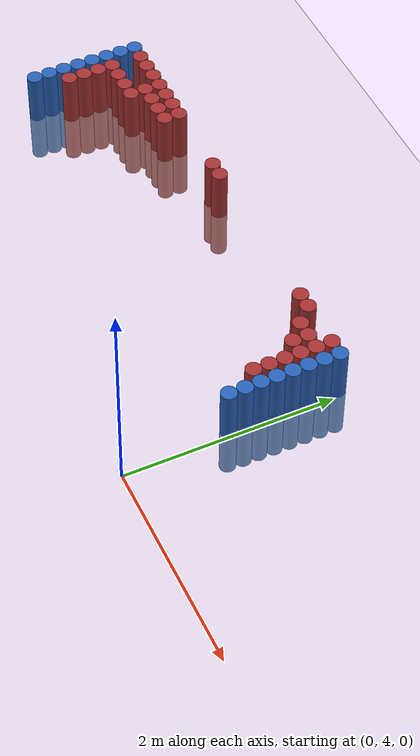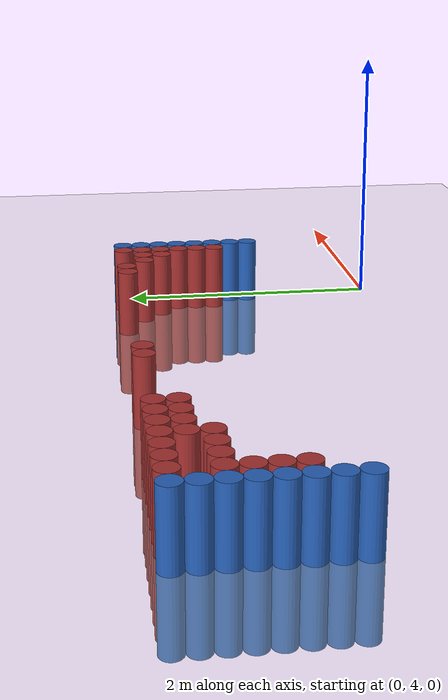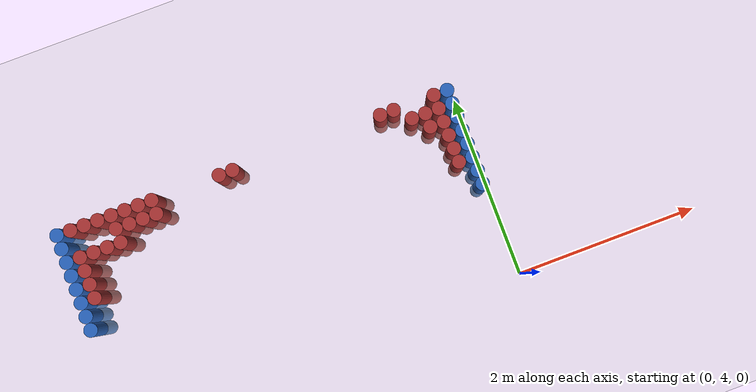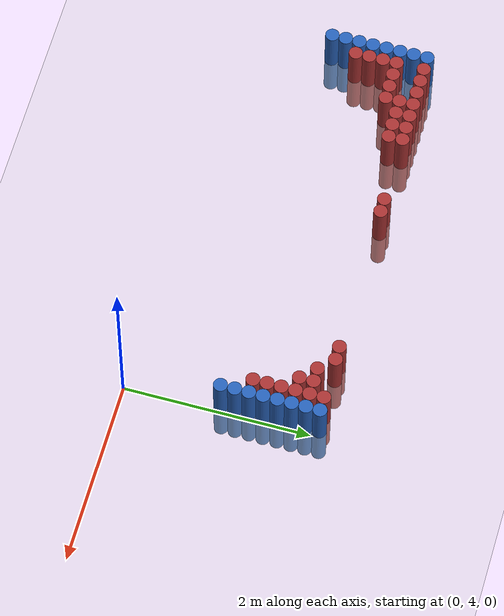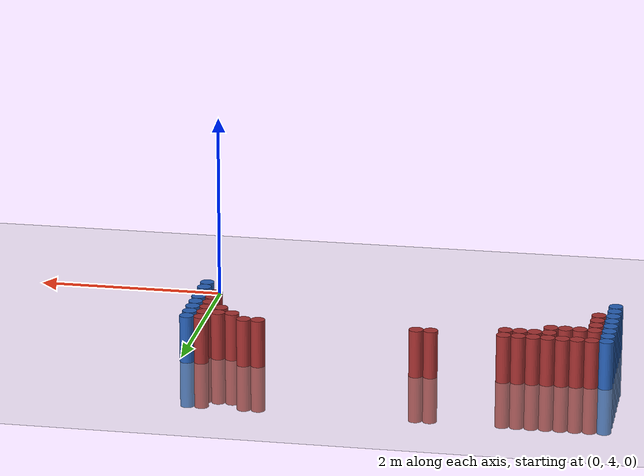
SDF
<sdf version="1.6">
 <world name="default">
  <model name="ground_plane">
   <static>1</static>
   <link name="link">
    <collision name="collision">
     <geometry><plane><normal>0 0 1</normal><size>100 100</size></plane></geometry>
     <surface><friction><ode><mu>100</mu><mu2>50</mu2></ode></friction></surface>
    </collision>
    <visual name="visual">
     <cast_shadows>0</cast_shadows>
     <geometry><plane><normal>0 0 1</normal><size>100 100</size></plane></geometry>
     <material>
      <script><uri>file://media/materials/scripts/gazebo.material</uri><name>Gazebo/Grey</name></script>
     </material>
    </visual>
   </link>
  </model>
  <model name="unit_cylinder_94">
   <static>1</static>
   <pose>-0.075000 5.025000 0.000000 0.000000 0.000000 0.000000</pose>
   <link name="link">
    <inertial>
     <mass>1</mass>
     <inertia><ixx>0.145833</ixx><ixy>0</ixy><ixz>0</ixz><iyy>0.145833</iyy><iyz>0</iyz><izz>0.125</izz></inertia>
    </inertial>
    <collision name="collision">
     <geometry><cylinder><radius>0.075000</radius><length>1</length></cylinder></geometry>
    </collision>
    <visual name="visual">
     <geometry><cylinder><radius>0.075000</radius><length>1</length></cylinder></geometry>
     <material>
      <ambient>0.152000 0.379000 0.720000 1</ambient>
      <diffuse>0.152000 0.379000 0.720000 1</diffuse>
     </material>
     <material>
      <script><name>Gazebo/Grey</name><uri>file://media/materials/scripts/gazebo.material</uri></script>
     </material>
    </visual>
   </link>
  </model>
  <model name="unit_cylinder_95">
   <static>1</static>
   <pose>-4.425000 5.025000 0.000000 0.000000 0.000000 0.000000</pose>
   <link name="link">
    <inertial>
     <mass>1</mass>
     <inertia><ixx>0.145833</ixx><ixy>0</ixy><ixz>0</ixz><iyy>0.145833</iyy><iyz>0</iyz><izz>0.125</izz></inertia>
    </inertial>
    <collision name="collision">
     <geometry><cylinder><radius>0.075000</radius><length>1</length></cylinder></geometry>
    </collision>
    <visual name="visual">
     <geometry><cylinder><radius>0.075000</radius><length>1</length></cylinder></geometry>
     <material>
      <ambient>0.152000 0.379000 0.720000 1</ambient>
      <diffuse>0.152000 0.379000 0.720000 1</diffuse>
     </material>
     <material>
      <script><name>Gazebo/Grey</name><uri>file://media/materials/scripts/gazebo.material</uri></script>
     </material>
    </visual>
   </link>
  </model>
  <model name="unit_cylinder_96">
   <static>1</static>
   <pose>-4.425000 5.175000 0.000000 0.000000 0.000000 0.000000</pose>
   <link name="link">
    <inertial>
     <mass>1</mass>
     <inertia><ixx>0.145833</ixx><ixy>0</ixy><ixz>0</ixz><iyy>0.145833</iyy><iyz>0</iyz><izz>0.125</izz></inertia>
    </inertial>
    <collision name="collision">
     <geometry><cylinder><radius>0.075000</radius><length>1</length></cylinder></geometry>
    </collision>
    <visual name="visual">
     <geometry><cylinder><radius>0.075000</radius><length>1</length></cylinder></geometry>
     <material>
      <ambient>0.152000 0.379000 0.720000 1</ambient>
      <diffuse>0.152000 0.379000 0.720000 1</diffuse>
     </material>
     <material>
      <script><name>Gazebo/Grey</name><uri>file://media/materials/scripts/gazebo.material</uri></script>
     </material>
    </visual>
   </link>
  </model>
  <model name="unit_cylinder_97">
   <static>1</static>
   <pose>-4.425000 5.325000 0.000000 0.000000 0.000000 0.000000</pose>
   <link name="link">
    <inertial>
     <mass>1</mass>
     <inertia><ixx>0.145833</ixx><ixy>0</ixy><ixz>0</ixz><iyy>0.145833</iyy><iyz>0</iyz><izz>0.125</izz></inertia>
    </inertial>
    <collision name="collision">
     <geometry><cylinder><radius>0.075000</radius><length>1</length></cylinder></geometry>
    </collision>
    <visual name="visual">
     <geometry><cylinder><radius>0.075000</radius><length>1</length></cylinder></geometry>
     <material>
      <ambient>0.152000 0.379000 0.720000 1</ambient>
      <diffuse>0.152000 0.379000 0.720000 1</diffuse>
     </material>
     <material>
      <script><name>Gazebo/Grey</name><uri>file://media/materials/scripts/gazebo.material</uri></script>
     </material>
    </visual>
   </link>
  </model>
  <model name="unit_cylinder_98">
   <static>1</static>
   <pose>-4.425000 5.475000 0.000000 0.000000 0.000000 0.000000</pose>
   <link name="link">
    <inertial>
     <mass>1</mass>
     <inertia><ixx>0.145833</ixx><ixy>0</ixy><ixz>0</ixz><iyy>0.145833</iyy><iyz>0</iyz><izz>0.125</izz></inertia>
    </inertial>
    <collision name="collision">
     <geometry><cylinder><radius>0.075000</radius><length>1</length></cylinder></geometry>
    </collision>
    <visual name="visual">
     <geometry><cylinder><radius>0.075000</radius><length>1</length></cylinder></geometry>
     <material>
      <ambient>0.152000 0.379000 0.720000 1</ambient>
      <diffuse>0.152000 0.379000 0.720000 1</diffuse>
     </material>
     <material>
      <script><name>Gazebo/Grey</name><uri>file://media/materials/scripts/gazebo.material</uri></script>
     </material>
    </visual>
   </link>
  </model>
  <model name="unit_cylinder_99">
   <static>1</static>
   <pose>-4.425000 5.625000 0.000000 0.000000 0.000000 0.000000</pose>
   <link name="link">
    <inertial>
     <mass>1</mass>
     <inertia><ixx>0.145833</ixx><ixy>0</ixy><ixz>0</ixz><iyy>0.145833</iyy><iyz>0</iyz><izz>0.125</izz></inertia>
    </inertial>
    <collision name="collision">
     <geometry><cylinder><radius>0.075000</radius><length>1</length></cylinder></geometry>
    </collision>
    <visual name="visual">
     <geometry><cylinder><radius>0.075000</radius><length>1</length></cylinder></geometry>
     <material>
      <ambient>0.152000 0.379000 0.720000 1</ambient>
      <diffuse>0.152000 0.379000 0.720000 1</diffuse>
     </material>
     <material>
      <script><name>Gazebo/Grey</name><uri>file://media/materials/scripts/gazebo.material</uri></script>
     </material>
    </visual>
   </link>
  </model>
  <model name="unit_cylinder_100">
   <static>1</static>
   <pose>-4.425000 5.775000 0.000000 0.000000 0.000000 0.000000</pose>
   <link name="link">
    <inertial>
     <mass>1</mass>
     <inertia><ixx>0.145833</ixx><ixy>0</ixy><ixz>0</ixz><iyy>0.145833</iyy><iyz>0</iyz><izz>0.125</izz></inertia>
    </inertial>
    <collision name="collision">
     <geometry><cylinder><radius>0.075000</radius><length>1</length></cylinder></geometry>
    </collision>
    <visual name="visual">
     <geometry><cylinder><radius>0.075000</radius><length>1</length></cylinder></geometry>
     <material>
      <ambient>0.152000 0.379000 0.720000 1</ambient>
      <diffuse>0.152000 0.379000 0.720000 1</diffuse>
     </material>
     <material>
      <script><name>Gazebo/Grey</name><uri>file://media/materials/scripts/gazebo.material</uri></script>
     </material>
    </visual>
   </link>
  </model>
  <model name="unit_cylinder_101">
   <static>1</static>
   <pose>-4.425000 5.925000 0.000000 0.000000 0.000000 0.000000</pose>
   <link name="link">
    <inertial>
     <mass>1</mass>
     <inertia><ixx>0.145833</ixx><ixy>0</ixy><ixz>0</ixz><iyy>0.145833</iyy><iyz>0</iyz><izz>0.125</izz></inertia>
    </inertial>
    <collision name="collision">
     <geometry><cylinder><radius>0.075000</radius><length>1</length></cylinder></geometry>
    </collision>
    <visual name="visual">
     <geometry><cylinder><radius>0.075000</radius><length>1</length></cylinder></geometry>
     <material>
      <ambient>0.152000 0.379000 0.720000 1</ambient>
      <diffuse>0.152000 0.379000 0.720000 1</diffuse>
     </material>
     <material>
      <script><name>Gazebo/Grey</name><uri>file://media/materials/scripts/gazebo.material</uri></script>
     </material>
    </visual>
   </link>
  </model>
  <model name="unit_cylinder_102">
   <static>1</static>
   <pose>-4.425000 6.075000 0.000000 0.000000 0.000000 0.000000</pose>
   <link name="link">
    <inertial>
     <mass>1</mass>
     <inertia><ixx>0.145833</ixx><ixy>0</ixy><ixz>0</ixz><iyy>0.145833</iyy><iyz>0</iyz><izz>0.125</izz></inertia>
    </inertial>
    <collision name="collision">
     <geometry><cylinder><radius>0.075000</radius><length>1</length></cylinder></geometry>
    </collision>
    <visual name="visual">
     <geometry><cylinder><radius>0.075000</radius><length>1</length></cylinder></geometry>
     <material>
      <ambient>0.152000 0.379000 0.720000 1</ambient>
      <diffuse>0.152000 0.379000 0.720000 1</diffuse>
     </material>
     <material>
      <script><name>Gazebo/Grey</name><uri>file://media/materials/scripts/gazebo.material</uri></script>
     </material>
    </visual>
   </link>
  </model>
  <model name="unit_cylinder_126">
   <static>1</static>
   <pose>-4.275000 5.325000 0.000000 0.000000 0.000000 0.000000</pose>
   <link name="link">
    <inertial>
     <mass>1</mass>
     <inertia><ixx>0.145833</ixx><ixy>0</ixy><ixz>0</ixz><iyy>0.145833</iyy><iyz>0</iyz><izz>0.125</izz></inertia>
    </inertial>
    <collision name="collision">
     <geometry><cylinder><radius>0.075000</radius><length>1</length></cylinder></geometry>
    </collision>
    <visual name="visual">
     <geometry><cylinder><radius>0.075000</radius><length>1</length></cylinder></geometry>
     <material>
      <ambient>0.648000 0.192000 0.192000 1</ambient>
      <diffuse>0.648000 0.192000 0.192000 1</diffuse>
     </material>
     <material>
      <script><name>Gazebo/Grey</name><uri>file://media/materials/scripts/gazebo.material</uri></script>
     </material>
    </visual>
   </link>
  </model>
  <model name="unit_cylinder_127">
   <static>1</static>
   <pose>-4.275000 5.475000 0.000000 0.000000 0.000000 0.000000</pose>
   <link name="link">
    <inertial>
     <mass>1</mass>
     <inertia><ixx>0.145833</ixx><ixy>0</ixy><ixz>0</ixz><iyy>0.145833</iyy><iyz>0</iyz><izz>0.125</izz></inertia>
    </inertial>
    <collision name="collision">
     <geometry><cylinder><radius>0.075000</radius><length>1</length></cylinder></geometry>
    </collision>
    <visual name="visual">
     <geometry><cylinder><radius>0.075000</radius><length>1</length></cylinder></geometry>
     <material>
      <ambient>0.648000 0.192000 0.192000 1</ambient>
      <diffuse>0.648000 0.192000 0.192000 1</diffuse>
     </material>
     <material>
      <script><name>Gazebo/Grey</name><uri>file://media/materials/scripts/gazebo.material</uri></script>
     </material>
    </visual>
   </link>
  </model>
  <model name="unit_cylinder_128">
   <static>1</static>
   <pose>-4.275000 5.625000 0.000000 0.000000 0.000000 0.000000</pose>
   <link name="link">
    <inertial>
     <mass>1</mass>
     <inertia><ixx>0.145833</ixx><ixy>0</ixy><ixz>0</ixz><iyy>0.145833</iyy><iyz>0</iyz><izz>0.125</izz></inertia>
    </inertial>
    <collision name="collision">
     <geometry><cylinder><radius>0.075000</radius><length>1</length></cylinder></geometry>
    </collision>
    <visual name="visual">
     <geometry><cylinder><radius>0.075000</radius><length>1</length></cylinder></geometry>
     <material>
      <ambient>0.648000 0.192000 0.192000 1</ambient>
      <diffuse>0.648000 0.192000 0.192000 1</diffuse>
     </material>
     <material>
      <script><name>Gazebo/Grey</name><uri>file://media/materials/scripts/gazebo.material</uri></script>
     </material>
    </visual>
   </link>
  </model>
  <model name="unit_cylinder_129">
   <static>1</static>
   <pose>-4.275000 5.775000 0.000000 0.000000 0.000000 0.000000</pose>
   <link name="link">
    <inertial>
     <mass>1</mass>
     <inertia><ixx>0.145833</ixx><ixy>0</ixy><ixz>0</ixz><iyy>0.145833</iyy><iyz>0</iyz><izz>0.125</izz></inertia>
    </inertial>
    <collision name="collision">
     <geometry><cylinder><radius>0.075000</radius><length>1</length></cylinder></geometry>
    </collision>
    <visual name="visual">
     <geometry><cylinder><radius>0.075000</radius><length>1</length></cylinder></geometry>
     <material>
      <ambient>0.648000 0.192000 0.192000 1</ambient>
      <diffuse>0.648000 0.192000 0.192000 1</diffuse>
     </material>
     <material>
      <script><name>Gazebo/Grey</name><uri>file://media/materials/scripts/gazebo.material</uri></script>
     </material>
    </visual>
   </link>
  </model>
  <model name="unit_cylinder_130">
   <static>1</static>
   <pose>-4.275000 6.075000 0.000000 0.000000 0.000000 0.000000</pose>
   <link name="link">
    <inertial>
     <mass>1</mass>
     <inertia><ixx>0.145833</ixx><ixy>0</ixy><ixz>0</ixz><iyy>0.145833</iyy><iyz>0</iyz><izz>0.125</izz></inertia>
    </inertial>
    <collision name="collision">
     <geometry><cylinder><radius>0.075000</radius><length>1</length></cylinder></geometry>
    </collision>
    <visual name="visual">
     <geometry><cylinder><radius>0.075000</radius><length>1</length></cylinder></geometry>
     <material>
      <ambient>0.648000 0.192000 0.192000 1</ambient>
      <diffuse>0.648000 0.192000 0.192000 1</diffuse>
     </material>
     <material>
      <script><name>Gazebo/Grey</name><uri>file://media/materials/scripts/gazebo.material</uri></script>
     </material>
    </visual>
   </link>
  </model>
  <model name="unit_cylinder_143">
   <static>1</static>
   <pose>-4.125000 5.775000 0.000000 0.000000 0.000000 0.000000</pose>
   <link name="link">
    <inertial>
     <mass>1</mass>
     <inertia><ixx>0.145833</ixx><ixy>0</ixy><ixz>0</ixz><iyy>0.145833</iyy><iyz>0</iyz><izz>0.125</izz></inertia>
    </inertial>
    <collision name="collision">
     <geometry><cylinder><radius>0.075000</radius><length>1</length></cylinder></geometry>
    </collision>
    <visual name="visual">
     <geometry><cylinder><radius>0.075000</radius><length>1</length></cylinder></geometry>
     <material>
      <ambient>0.648000 0.192000 0.192000 1</ambient>
      <diffuse>0.648000 0.192000 0.192000 1</diffuse>
     </material>
     <material>
      <script><name>Gazebo/Grey</name><uri>file://media/materials/scripts/gazebo.material</uri></script>
     </material>
    </visual>
   </link>
  </model>
  <model name="unit_cylinder_144">
   <static>1</static>
   <pose>-4.125000 6.075000 0.000000 0.000000 0.000000 0.000000</pose>
   <link name="link">
    <inertial>
     <mass>1</mass>
     <inertia><ixx>0.145833</ixx><ixy>0</ixy><ixz>0</ixz><iyy>0.145833</iyy><iyz>0</iyz><izz>0.125</izz></inertia>
    </inertial>
    <collision name="collision">
     <geometry><cylinder><radius>0.075000</radius><length>1</length></cylinder></geometry>
    </collision>
    <visual name="visual">
     <geometry><cylinder><radius>0.075000</radius><length>1</length></cylinder></geometry>
     <material>
      <ambient>0.648000 0.192000 0.192000 1</ambient>
      <diffuse>0.648000 0.192000 0.192000 1</diffuse>
     </material>
     <material>
      <script><name>Gazebo/Grey</name><uri>file://media/materials/scripts/gazebo.material</uri></script>
     </material>
    </visual>
   </link>
  </model>
  <model name="unit_cylinder_147">
   <static>1</static>
   <pose>-3.975000 5.775000 0.000000 0.000000 0.000000 0.000000</pose>
   <link name="link">
    <inertial>
     <mass>1</mass>
     <inertia><ixx>0.145833</ixx><ixy>0</ixy><ixz>0</ixz><iyy>0.145833</iyy><iyz>0</iyz><izz>0.125</izz></inertia>
    </inertial>
    <collision name="collision">
     <geometry><cylinder><radius>0.075000</radius><length>1</length></cylinder></geometry>
    </collision>
    <visual name="visual">
     <geometry><cylinder><radius>0.075000</radius><length>1</length></cylinder></geometry>
     <material>
      <ambient>0.648000 0.192000 0.192000 1</ambient>
      <diffuse>0.648000 0.192000 0.192000 1</diffuse>
     </material>
     <material>
      <script><name>Gazebo/Grey</name><uri>file://media/materials/scripts/gazebo.material</uri></script>
     </material>
    </visual>
   </link>
  </model>
  <model name="unit_cylinder_148">
   <static>1</static>
   <pose>-3.975000 6.075000 0.000000 0.000000 0.000000 0.000000</pose>
   <link name="link">
    <inertial>
     <mass>1</mass>
     <inertia><ixx>0.145833</ixx><ixy>0</ixy><ixz>0</ixz><iyy>0.145833</iyy><iyz>0</iyz><izz>0.125</izz></inertia>
    </inertial>
    <collision name="collision">
     <geometry><cylinder><radius>0.075000</radius><length>1</length></cylinder></geometry>
    </collision>
    <visual name="visual">
     <geometry><cylinder><radius>0.075000</radius><length>1</length></cylinder></geometry>
     <material>
      <ambient>0.648000 0.192000 0.192000 1</ambient>
      <diffuse>0.648000 0.192000 0.192000 1</diffuse>
     </material>
     <material>
      <script><name>Gazebo/Grey</name><uri>file://media/materials/scripts/gazebo.material</uri></script>
     </material>
    </visual>
   </link>
  </model>
  <model name="unit_cylinder_149">
   <static>1</static>
   <pose>-3.825000 5.775000 0.000000 0.000000 0.000000 0.000000</pose>
   <link name="link">
    <inertial>
     <mass>1</mass>
     <inertia><ixx>0.145833</ixx><ixy>0</ixy><ixz>0</ixz><iyy>0.145833</iyy><iyz>0</iyz><izz>0.125</izz></inertia>
    </inertial>
    <collision name="collision">
     <geometry><cylinder><radius>0.075000</radius><length>1</length></cylinder></geometry>
    </collision>
    <visual name="visual">
     <geometry><cylinder><radius>0.075000</radius><length>1</length></cylinder></geometry>
     <material>
      <ambient>0.648000 0.192000 0.192000 1</ambient>
      <diffuse>0.648000 0.192000 0.192000 1</diffuse>
     </material>
     <material>
      <script><name>Gazebo/Grey</name><uri>file://media/materials/scripts/gazebo.material</uri></script>
     </material>
    </visual>
   </link>
  </model>
  <model name="unit_cylinder_150">
   <static>1</static>
   <pose>-3.825000 5.925000 0.000000 0.000000 0.000000 0.000000</pose>
   <link name="link">
    <inertial>
     <mass>1</mass>
     <inertia><ixx>0.145833</ixx><ixy>0</ixy><ixz>0</ixz><iyy>0.145833</iyy><iyz>0</iyz><izz>0.125</izz></inertia>
    </inertial>
    <collision name="collision">
     <geometry><cylinder><radius>0.075000</radius><length>1</length></cylinder></geometry>
    </collision>
    <visual name="visual">
     <geometry><cylinder><radius>0.075000</radius><length>1</length></cylinder></geometry>
     <material>
      <ambient>0.648000 0.192000 0.192000 1</ambient>
      <diffuse>0.648000 0.192000 0.192000 1</diffuse>
     </material>
     <material>
      <script><name>Gazebo/Grey</name><uri>file://media/materials/scripts/gazebo.material</uri></script>
     </material>
    </visual>
   </link>
  </model>
  <model name="unit_cylinder_151">
   <static>1</static>
   <pose>-3.825000 6.075000 0.000000 0.000000 0.000000 0.000000</pose>
   <link name="link">
    <inertial>
     <mass>1</mass>
     <inertia><ixx>0.145833</ixx><ixy>0</ixy><ixz>0</ixz><iyy>0.145833</iyy><iyz>0</iyz><izz>0.125</izz></inertia>
    </inertial>
    <collision name="collision">
     <geometry><cylinder><radius>0.075000</radius><length>1</length></cylinder></geometry>
    </collision>
    <visual name="visual">
     <geometry><cylinder><radius>0.075000</radius><length>1</length></cylinder></geometry>
     <material>
      <ambient>0.648000 0.192000 0.192000 1</ambient>
      <diffuse>0.648000 0.192000 0.192000 1</diffuse>
     </material>
     <material>
      <script><name>Gazebo/Grey</name><uri>file://media/materials/scripts/gazebo.material</uri></script>
     </material>
    </visual>
   </link>
  </model>
  <model name="unit_cylinder_154">
   <static>1</static>
   <pose>-3.675000 5.925000 0.000000 0.000000 0.000000 0.000000</pose>
   <link name="link">
    <inertial>
     <mass>1</mass>
     <inertia><ixx>0.145833</ixx><ixy>0</ixy><ixz>0</ixz><iyy>0.145833</iyy><iyz>0</iyz><izz>0.125</izz></inertia>
    </inertial>
    <collision name="collision">
     <geometry><cylinder><radius>0.075000</radius><length>1</length></cylinder></geometry>
    </collision>
    <visual name="visual">
     <geometry><cylinder><radius>0.075000</radius><length>1</length></cylinder></geometry>
     <material>
      <ambient>0.648000 0.192000 0.192000 1</ambient>
      <diffuse>0.648000 0.192000 0.192000 1</diffuse>
     </material>
     <material>
      <script><name>Gazebo/Grey</name><uri>file://media/materials/scripts/gazebo.material</uri></script>
     </material>
    </visual>
   </link>
  </model>
  <model name="unit_cylinder_155">
   <static>1</static>
   <pose>-3.675000 6.075000 0.000000 0.000000 0.000000 0.000000</pose>
   <link name="link">
    <inertial>
     <mass>1</mass>
     <inertia><ixx>0.145833</ixx><ixy>0</ixy><ixz>0</ixz><iyy>0.145833</iyy><iyz>0</iyz><izz>0.125</izz></inertia>
    </inertial>
    <collision name="collision">
     <geometry><cylinder><radius>0.075000</radius><length>1</length></cylinder></geometry>
    </collision>
    <visual name="visual">
     <geometry><cylinder><radius>0.075000</radius><length>1</length></cylinder></geometry>
     <material>
      <ambient>0.648000 0.192000 0.192000 1</ambient>
      <diffuse>0.648000 0.192000 0.192000 1</diffuse>
     </material>
     <material>
      <script><name>Gazebo/Grey</name><uri>file://media/materials/scripts/gazebo.material</uri></script>
     </material>
    </visual>
   </link>
  </model>
  <model name="unit_cylinder_160">
   <static>1</static>
   <pose>-3.525000 5.925000 0.000000 0.000000 0.000000 0.000000</pose>
   <link name="link">
    <inertial>
     <mass>1</mass>
     <inertia><ixx>0.145833</ixx><ixy>0</ixy><ixz>0</ixz><iyy>0.145833</iyy><iyz>0</iyz><izz>0.125</izz></inertia>
    </inertial>
    <collision name="collision">
     <geometry><cylinder><radius>0.075000</radius><length>1</length></cylinder></geometry>
    </collision>
    <visual name="visual">
     <geometry><cylinder><radius>0.075000</radius><length>1</length></cylinder></geometry>
     <material>
      <ambient>0.648000 0.192000 0.192000 1</ambient>
      <diffuse>0.648000 0.192000 0.192000 1</diffuse>
     </material>
     <material>
      <script><name>Gazebo/Grey</name><uri>file://media/materials/scripts/gazebo.material</uri></script>
     </material>
    </visual>
   </link>
  </model>
  <model name="unit_cylinder_161">
   <static>1</static>
   <pose>-3.525000 6.075000 0.000000 0.000000 0.000000 0.000000</pose>
   <link name="link">
    <inertial>
     <mass>1</mass>
     <inertia><ixx>0.145833</ixx><ixy>0</ixy><ixz>0</ixz><iyy>0.145833</iyy><iyz>0</iyz><izz>0.125</izz></inertia>
    </inertial>
    <collision name="collision">
     <geometry><cylinder><radius>0.075000</radius><length>1</length></cylinder></geometry>
    </collision>
    <visual name="visual">
     <geometry><cylinder><radius>0.075000</radius><length>1</length></cylinder></geometry>
     <material>
      <ambient>0.648000 0.192000 0.192000 1</ambient>
      <diffuse>0.648000 0.192000 0.192000 1</diffuse>
     </material>
     <material>
      <script><name>Gazebo/Grey</name><uri>file://media/materials/scripts/gazebo.material</uri></script>
     </material>
    </visual>
   </link>
  </model>
  <model name="unit_cylinder_164">
   <static>1</static>
   <pose>-3.375000 5.925000 0.000000 0.000000 0.000000 0.000000</pose>
   <link name="link">
    <inertial>
     <mass>1</mass>
     <inertia><ixx>0.145833</ixx><ixy>0</ixy><ixz>0</ixz><iyy>0.145833</iyy><iyz>0</iyz><izz>0.125</izz></inertia>
    </inertial>
    <collision name="collision">
     <geometry><cylinder><radius>0.075000</radius><length>1</length></cylinder></geometry>
    </collision>
    <visual name="visual">
     <geometry><cylinder><radius>0.075000</radius><length>1</length></cylinder></geometry>
     <material>
      <ambient>0.648000 0.192000 0.192000 1</ambient>
      <diffuse>0.648000 0.192000 0.192000 1</diffuse>
     </material>
     <material>
      <script><name>Gazebo/Grey</name><uri>file://media/materials/scripts/gazebo.material</uri></script>
     </material>
    </visual>
   </link>
  </model>
  <model name="unit_cylinder_165">
   <static>1</static>
   <pose>-3.375000 6.075000 0.000000 0.000000 0.000000 0.000000</pose>
   <link name="link">
    <inertial>
     <mass>1</mass>
     <inertia><ixx>0.145833</ixx><ixy>0</ixy><ixz>0</ixz><iyy>0.145833</iyy><iyz>0</iyz><izz>0.125</izz></inertia>
    </inertial>
    <collision name="collision">
     <geometry><cylinder><radius>0.075000</radius><length>1</length></cylinder></geometry>
    </collision>
    <visual name="visual">
     <geometry><cylinder><radius>0.075000</radius><length>1</length></cylinder></geometry>
     <material>
      <ambient>0.648000 0.192000 0.192000 1</ambient>
      <diffuse>0.648000 0.192000 0.192000 1</diffuse>
     </material>
     <material>
      <script><name>Gazebo/Grey</name><uri>file://media/materials/scripts/gazebo.material</uri></script>
     </material>
    </visual>
   </link>
  </model>
  <model name="unit_cylinder_174">
   <static>1</static>
   <pose>-2.625000 6.075000 0.000000 0.000000 0.000000 0.000000</pose>
   <link name="link">
    <inertial>
     <mass>1</mass>
     <inertia><ixx>0.145833</ixx><ixy>0</ixy><ixz>0</ixz><iyy>0.145833</iyy><iyz>0</iyz><izz>0.125</izz></inertia>
    </inertial>
    <collision name="collision">
     <geometry><cylinder><radius>0.075000</radius><length>1</length></cylinder></geometry>
    </collision>
    <visual name="visual">
     <geometry><cylinder><radius>0.075000</radius><length>1</length></cylinder></geometry>
     <material>
      <ambient>0.648000 0.192000 0.192000 1</ambient>
      <diffuse>0.648000 0.192000 0.192000 1</diffuse>
     </material>
     <material>
      <script><name>Gazebo/Grey</name><uri>file://media/materials/scripts/gazebo.material</uri></script>
     </material>
    </visual>
   </link>
  </model>
  <model name="unit_cylinder_175">
   <static>1</static>
   <pose>-2.475000 6.075000 0.000000 0.000000 0.000000 0.000000</pose>
   <link name="link">
    <inertial>
     <mass>1</mass>
     <inertia><ixx>0.145833</ixx><ixy>0</ixy><ixz>0</ixz><iyy>0.145833</iyy><iyz>0</iyz><izz>0.125</izz></inertia>
    </inertial>
    <collision name="collision">
     <geometry><cylinder><radius>0.075000</radius><length>1</length></cylinder></geometry>
    </collision>
    <visual name="visual">
     <geometry><cylinder><radius>0.075000</radius><length>1</length></cylinder></geometry>
     <material>
      <ambient>0.648000 0.192000 0.192000 1</ambient>
      <diffuse>0.648000 0.192000 0.192000 1</diffuse>
     </material>
     <material>
      <script><name>Gazebo/Grey</name><uri>file://media/materials/scripts/gazebo.material</uri></script>
     </material>
    </visual>
   </link>
  </model>
  <model name="unit_cylinder_215">
   <static>1</static>
   <pose>-0.825000 6.075000 0.000000 0.000000 0.000000 0.000000</pose>
   <link name="link">
    <inertial>
     <mass>1</mass>
     <inertia><ixx>0.145833</ixx><ixy>0</ixy><ixz>0</ixz><iyy>0.145833</iyy><iyz>0</iyz><izz>0.125</izz></inertia>
    </inertial>
    <collision name="collision">
     <geometry><cylinder><radius>0.075000</radius><length>1</length></cylinder></geometry>
    </collision>
    <visual name="visual">
     <geometry><cylinder><radius>0.075000</radius><length>1</length></cylinder></geometry>
     <material>
      <ambient>0.648000 0.192000 0.192000 1</ambient>
      <diffuse>0.648000 0.192000 0.192000 1</diffuse>
     </material>
     <material>
      <script><name>Gazebo/Grey</name><uri>file://media/materials/scripts/gazebo.material</uri></script>
     </material>
    </visual>
   </link>
  </model>
  <model name="unit_cylinder_223">
   <static>1</static>
   <pose>-0.675000 6.075000 0.000000 0.000000 0.000000 0.000000</pose>
   <link name="link">
    <inertial>
     <mass>1</mass>
     <inertia><ixx>0.145833</ixx><ixy>0</ixy><ixz>0</ixz><iyy>0.145833</iyy><iyz>0</iyz><izz>0.125</izz></inertia>
    </inertial>
    <collision name="collision">
     <geometry><cylinder><radius>0.075000</radius><length>1</length></cylinder></geometry>
    </collision>
    <visual name="visual">
     <geometry><cylinder><radius>0.075000</radius><length>1</length></cylinder></geometry>
     <material>
      <ambient>0.648000 0.192000 0.192000 1</ambient>
      <diffuse>0.648000 0.192000 0.192000 1</diffuse>
     </material>
     <material>
      <script><name>Gazebo/Grey</name><uri>file://media/materials/scripts/gazebo.material</uri></script>
     </material>
    </visual>
   </link>
  </model>
  <model name="unit_cylinder_228">
   <static>1</static>
   <pose>-0.525000 5.925000 0.000000 0.000000 0.000000 0.000000</pose>
   <link name="link">
    <inertial>
     <mass>1</mass>
     <inertia><ixx>0.145833</ixx><ixy>0</ixy><ixz>0</ixz><iyy>0.145833</iyy><iyz>0</iyz><izz>0.125</izz></inertia>
    </inertial>
    <collision name="collision">
     <geometry><cylinder><radius>0.075000</radius><length>1</length></cylinder></geometry>
    </collision>
    <visual name="visual">
     <geometry><cylinder><radius>0.075000</radius><length>1</length></cylinder></geometry>
     <material>
      <ambient>0.648000 0.192000 0.192000 1</ambient>
      <diffuse>0.648000 0.192000 0.192000 1</diffuse>
     </material>
     <material>
      <script><name>Gazebo/Grey</name><uri>file://media/materials/scripts/gazebo.material</uri></script>
     </material>
    </visual>
   </link>
  </model>
  <model name="unit_cylinder_232">
   <static>1</static>
   <pose>-0.375000 5.775000 0.000000 0.000000 0.000000 0.000000</pose>
   <link name="link">
    <inertial>
     <mass>1</mass>
     <inertia><ixx>0.145833</ixx><ixy>0</ixy><ixz>0</ixz><iyy>0.145833</iyy><iyz>0</iyz><izz>0.125</izz></inertia>
    </inertial>
    <collision name="collision">
     <geometry><cylinder><radius>0.075000</radius><length>1</length></cylinder></geometry>
    </collision>
    <visual name="visual">
     <geometry><cylinder><radius>0.075000</radius><length>1</length></cylinder></geometry>
     <material>
      <ambient>0.648000 0.192000 0.192000 1</ambient>
      <diffuse>0.648000 0.192000 0.192000 1</diffuse>
     </material>
     <material>
      <script><name>Gazebo/Grey</name><uri>file://media/materials/scripts/gazebo.material</uri></script>
     </material>
    </visual>
   </link>
  </model>
  <model name="unit_cylinder_233">
   <static>1</static>
   <pose>-0.375000 5.925000 0.000000 0.000000 0.000000 0.000000</pose>
   <link name="link">
    <inertial>
     <mass>1</mass>
     <inertia><ixx>0.145833</ixx><ixy>0</ixy><ixz>0</ixz><iyy>0.145833</iyy><iyz>0</iyz><izz>0.125</izz></inertia>
    </inertial>
    <collision name="collision">
     <geometry><cylinder><radius>0.075000</radius><length>1</length></cylinder></geometry>
    </collision>
    <visual name="visual">
     <geometry><cylinder><radius>0.075000</radius><length>1</length></cylinder></geometry>
     <material>
      <ambient>0.648000 0.192000 0.192000 1</ambient>
      <diffuse>0.648000 0.192000 0.192000 1</diffuse>
     </material>
     <material>
      <script><name>Gazebo/Grey</name><uri>file://media/materials/scripts/gazebo.material</uri></script>
     </material>
    </visual>
   </link>
  </model>
  <model name="unit_cylinder_236">
   <static>1</static>
   <pose>-0.225000 5.325000 0.000000 0.000000 0.000000 0.000000</pose>
   <link name="link">
    <inertial>
     <mass>1</mass>
     <inertia><ixx>0.145833</ixx><ixy>0</ixy><ixz>0</ixz><iyy>0.145833</iyy><iyz>0</iyz><izz>0.125</izz></inertia>
    </inertial>
    <collision name="collision">
     <geometry><cylinder><radius>0.075000</radius><length>1</length></cylinder></geometry>
    </collision>
    <visual name="visual">
     <geometry><cylinder><radius>0.075000</radius><length>1</length></cylinder></geometry>
     <material>
      <ambient>0.648000 0.192000 0.192000 1</ambient>
      <diffuse>0.648000 0.192000 0.192000 1</diffuse>
     </material>
     <material>
      <script><name>Gazebo/Grey</name><uri>file://media/materials/scripts/gazebo.material</uri></script>
     </material>
    </visual>
   </link>
  </model>
  <model name="unit_cylinder_237">
   <static>1</static>
   <pose>-0.225000 5.475000 0.000000 0.000000 0.000000 0.000000</pose>
   <link name="link">
    <inertial>
     <mass>1</mass>
     <inertia><ixx>0.145833</ixx><ixy>0</ixy><ixz>0</ixz><iyy>0.145833</iyy><iyz>0</iyz><izz>0.125</izz></inertia>
    </inertial>
    <collision name="collision">
     <geometry><cylinder><radius>0.075000</radius><length>1</length></cylinder></geometry>
    </collision>
    <visual name="visual">
     <geometry><cylinder><radius>0.075000</radius><length>1</length></cylinder></geometry>
     <material>
      <ambient>0.648000 0.192000 0.192000 1</ambient>
      <diffuse>0.648000 0.192000 0.192000 1</diffuse>
     </material>
     <material>
      <script><name>Gazebo/Grey</name><uri>file://media/materials/scripts/gazebo.material</uri></script>
     </material>
    </visual>
   </link>
  </model>
  <model name="unit_cylinder_238">
   <static>1</static>
   <pose>-0.225000 5.625000 0.000000 0.000000 0.000000 0.000000</pose>
   <link name="link">
    <inertial>
     <mass>1</mass>
     <inertia><ixx>0.145833</ixx><ixy>0</ixy><ixz>0</ixz><iyy>0.145833</iyy><iyz>0</iyz><izz>0.125</izz></inertia>
    </inertial>
    <collision name="collision">
     <geometry><cylinder><radius>0.075000</radius><length>1</length></cylinder></geometry>
    </collision>
    <visual name="visual">
     <geometry><cylinder><radius>0.075000</radius><length>1</length></cylinder></geometry>
     <material>
      <ambient>0.648000 0.192000 0.192000 1</ambient>
      <diffuse>0.648000 0.192000 0.192000 1</diffuse>
     </material>
     <material>
      <script><name>Gazebo/Grey</name><uri>file://media/materials/scripts/gazebo.material</uri></script>
     </material>
    </visual>
   </link>
  </model>
  <model name="unit_cylinder_239">
   <static>1</static>
   <pose>-0.225000 5.775000 0.000000 0.000000 0.000000 0.000000</pose>
   <link name="link">
    <inertial>
     <mass>1</mass>
     <inertia><ixx>0.145833</ixx><ixy>0</ixy><ixz>0</ixz><iyy>0.145833</iyy><iyz>0</iyz><izz>0.125</izz></inertia>
    </inertial>
    <collision name="collision">
     <geometry><cylinder><radius>0.075000</radius><length>1</length></cylinder></geometry>
    </collision>
    <visual name="visual">
     <geometry><cylinder><radius>0.075000</radius><length>1</length></cylinder></geometry>
     <material>
      <ambient>0.648000 0.192000 0.192000 1</ambient>
      <diffuse>0.648000 0.192000 0.192000 1</diffuse>
     </material>
     <material>
      <script><name>Gazebo/Grey</name><uri>file://media/materials/scripts/gazebo.material</uri></script>
     </material>
    </visual>
   </link>
  </model>
  <model name="unit_cylinder_240">
   <static>1</static>
   <pose>-0.225000 5.925000 0.000000 0.000000 0.000000 0.000000</pose>
   <link name="link">
    <inertial>
     <mass>1</mass>
     <inertia><ixx>0.145833</ixx><ixy>0</ixy><ixz>0</ixz><iyy>0.145833</iyy><iyz>0</iyz><izz>0.125</izz></inertia>
    </inertial>
    <collision name="collision">
     <geometry><cylinder><radius>0.075000</radius><length>1</length></cylinder></geometry>
    </collision>
    <visual name="visual">
     <geometry><cylinder><radius>0.075000</radius><length>1</length></cylinder></geometry>
     <material>
      <ambient>0.648000 0.192000 0.192000 1</ambient>
      <diffuse>0.648000 0.192000 0.192000 1</diffuse>
     </material>
     <material>
      <script><name>Gazebo/Grey</name><uri>file://media/materials/scripts/gazebo.material</uri></script>
     </material>
    </visual>
   </link>
  </model>
  <model name="unit_cylinder_241">
   <static>1</static>
   <pose>-0.225000 6.075000 0.000000 0.000000 0.000000 0.000000</pose>
   <link name="link">
    <inertial>
     <mass>1</mass>
     <inertia><ixx>0.145833</ixx><ixy>0</ixy><ixz>0</ixz><iyy>0.145833</iyy><iyz>0</iyz><izz>0.125</izz></inertia>
    </inertial>
    <collision name="collision">
     <geometry><cylinder><radius>0.075000</radius><length>1</length></cylinder></geometry>
    </collision>
    <visual name="visual">
     <geometry><cylinder><radius>0.075000</radius><length>1</length></cylinder></geometry>
     <material>
      <ambient>0.648000 0.192000 0.192000 1</ambient>
      <diffuse>0.648000 0.192000 0.192000 1</diffuse>
     </material>
     <material>
      <script><name>Gazebo/Grey</name><uri>file://media/materials/scripts/gazebo.material</uri></script>
     </material>
    </visual>
   </link>
  </model>
  <model name="unit_cylinder_252">
   <static>1</static>
   <pose>-0.075000 5.175000 0.000000 0.000000 0.000000 0.000000</pose>
   <link name="link">
    <inertial>
     <mass>1</mass>
     <inertia><ixx>0.145833</ixx><ixy>0</ixy><ixz>0</ixz><iyy>0.145833</iyy><iyz>0</iyz><izz>0.125</izz></inertia>
    </inertial>
    <collision name="collision">
     <geometry><cylinder><radius>0.075000</radius><length>1</length></cylinder></geometry>
    </collision>
    <visual name="visual">
     <geometry><cylinder><radius>0.075000</radius><length>1</length></cylinder></geometry>
     <material>
      <ambient>0.152000 0.379000 0.720000 1</ambient>
      <diffuse>0.152000 0.379000 0.720000 1</diffuse>
     </material>
     <material>
      <script><name>Gazebo/Grey</name><uri>file://media/materials/scripts/gazebo.material</uri></script>
     </material>
    </visual>
   </link>
  </model>
  <model name="unit_cylinder_253">
   <static>1</static>
   <pose>-0.075000 5.325000 0.000000 0.000000 0.000000 0.000000</pose>
   <link name="link">
    <inertial>
     <mass>1</mass>
     <inertia><ixx>0.145833</ixx><ixy>0</ixy><ixz>0</ixz><iyy>0.145833</iyy><iyz>0</iyz><izz>0.125</izz></inertia>
    </inertial>
    <collision name="collision">
     <geometry><cylinder><radius>0.075000</radius><length>1</length></cylinder></geometry>
    </collision>
    <visual name="visual">
     <geometry><cylinder><radius>0.075000</radius><length>1</length></cylinder></geometry>
     <material>
      <ambient>0.152000 0.379000 0.720000 1</ambient>
      <diffuse>0.152000 0.379000 0.720000 1</diffuse>
     </material>
     <material>
      <script><name>Gazebo/Grey</name><uri>file://media/materials/scripts/gazebo.material</uri></script>
     </material>
    </visual>
   </link>
  </model>
  <model name="unit_cylinder_254">
   <static>1</static>
   <pose>-0.075000 5.475000 0.000000 0.000000 0.000000 0.000000</pose>
   <link name="link">
    <inertial>
     <mass>1</mass>
     <inertia><ixx>0.145833</ixx><ixy>0</ixy><ixz>0</ixz><iyy>0.145833</iyy><iyz>0</iyz><izz>0.125</izz></inertia>
    </inertial>
    <collision name="collision">
     <geometry><cylinder><radius>0.075000</radius><length>1</length></cylinder></geometry>
    </collision>
    <visual name="visual">
     <geometry><cylinder><radius>0.075000</radius><length>1</length></cylinder></geometry>
     <material>
      <ambient>0.152000 0.379000 0.720000 1</ambient>
      <diffuse>0.152000 0.379000 0.720000 1</diffuse>
     </material>
     <material>
      <script><name>Gazebo/Grey</name><uri>file://media/materials/scripts/gazebo.material</uri></script>
     </material>
    </visual>
   </link>
  </model>
  <model name="unit_cylinder_255">
   <static>1</static>
   <pose>-0.075000 5.625000 0.000000 0.000000 0.000000 0.000000</pose>
   <link name="link">
    <inertial>
     <mass>1</mass>
     <inertia><ixx>0.145833</ixx><ixy>0</ixy><ixz>0</ixz><iyy>0.145833</iyy><iyz>0</iyz><izz>0.125</izz></inertia>
    </inertial>
    <collision name="collision">
     <geometry><cylinder><radius>0.075000</radius><length>1</length></cylinder></geometry>
    </collision>
    <visual name="visual">
     <geometry><cylinder><radius>0.075000</radius><length>1</length></cylinder></geometry>
     <material>
      <ambient>0.152000 0.379000 0.720000 1</ambient>
      <diffuse>0.152000 0.379000 0.720000 1</diffuse>
     </material>
     <material>
      <script><name>Gazebo/Grey</name><uri>file://media/materials/scripts/gazebo.material</uri></script>
     </material>
    </visual>
   </link>
  </model>
  <model name="unit_cylinder_256">
   <static>1</static>
   <pose>-0.075000 5.775000 0.000000 0.000000 0.000000 0.000000</pose>
   <link name="link">
    <inertial>
     <mass>1</mass>
     <inertia><ixx>0.145833</ixx><ixy>0</ixy><ixz>0</ixz><iyy>0.145833</iyy><iyz>0</iyz><izz>0.125</izz></inertia>
    </inertial>
    <collision name="collision">
     <geometry><cylinder><radius>0.075000</radius><length>1</length></cylinder></geometry>
    </collision>
    <visual name="visual">
     <geometry><cylinder><radius>0.075000</radius><length>1</length></cylinder></geometry>
     <material>
      <ambient>0.152000 0.379000 0.720000 1</ambient>
      <diffuse>0.152000 0.379000 0.720000 1</diffuse>
     </material>
     <material>
      <script><name>Gazebo/Grey</name><uri>file://media/materials/scripts/gazebo.material</uri></script>
     </material>
    </visual>
   </link>
  </model>
  <model name="unit_cylinder_257">
   <static>1</static>
   <pose>-0.075000 5.925000 0.000000 0.000000 0.000000 0.000000</pose>
   <link name="link">
    <inertial>
     <mass>1</mass>
     <inertia><ixx>0.145833</ixx><ixy>0</ixy><ixz>0</ixz><iyy>0.145833</iyy><iyz>0</iyz><izz>0.125</izz></inertia>
    </inertial>
    <collision name="collision">
     <geometry><cylinder><radius>0.075000</radius><length>1</length></cylinder></geometry>
    </collision>
    <visual name="visual">
     <geometry><cylinder><radius>0.075000</radius><length>1</length></cylinder></geometry>
     <material>
      <ambient>0.152000 0.379000 0.720000 1</ambient>
      <diffuse>0.152000 0.379000 0.720000 1</diffuse>
     </material>
     <material>
      <script><name>Gazebo/Grey</name><uri>file://media/materials/scripts/gazebo.material</uri></script>
     </material>
    </visual>
   </link>
  </model>
  <model name="unit_cylinder_258">
   <static>1</static>
   <pose>-0.075000 6.075000 0.000000 0.000000 0.000000 0.000000</pose>
   <link name="link">
    <inertial>
     <mass>1</mass>
     <inertia><ixx>0.145833</ixx><ixy>0</ixy><ixz>0</ixz><iyy>0.145833</iyy><iyz>0</iyz><izz>0.125</izz></inertia>
    </inertial>
    <collision name="collision">
     <geometry><cylinder><radius>0.075000</radius><length>1</length></cylinder></geometry>
    </collision>
    <visual name="visual">
     <geometry><cylinder><radius>0.075000</radius><length>1</length></cylinder></geometry>
     <material>
      <ambient>0.152000 0.379000 0.720000 1</ambient>
      <diffuse>0.152000 0.379000 0.720000 1</diffuse>
     </material>
     <material>
      <script><name>Gazebo/Grey</name><uri>file://media/materials/scripts/gazebo.material</uri></script>
     </material>
    </visual>
   </link>
  </model>
 </world>
</sdf>
